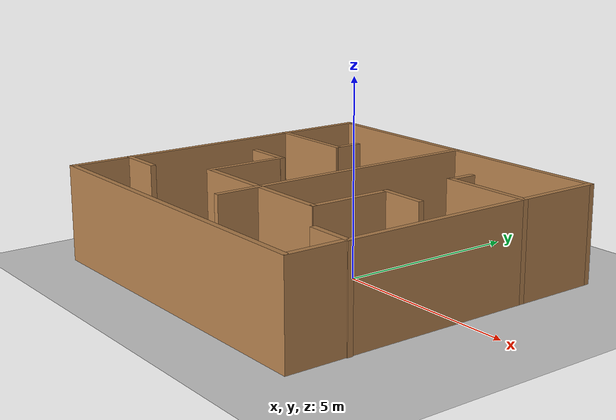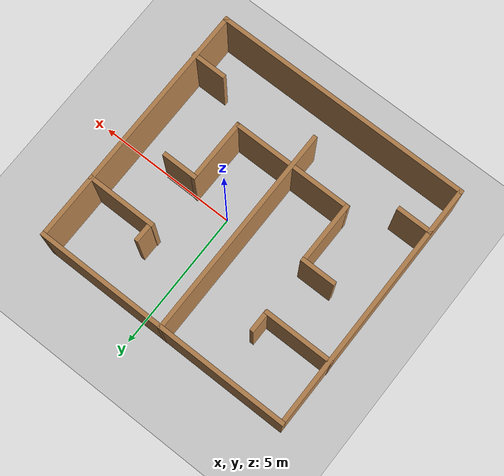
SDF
<sdf version="1.7">
 <world name="default">
  <light name="sun" type="directional">
   <pose>0 0 10 0 -0 0</pose>
   <diffuse>0.8 0.8 0.8 1</diffuse>
   <specular>0.2 0.2 0.2 1</specular>
   <attenuation>
    <range>1000</range>
    <constant>0.9</constant>
    <linear>0.01</linear>
    <quadratic>0.001</quadratic>
   </attenuation>
   <direction>-0.5 0.1 -0.9</direction>
   <spot><inner_angle>0</inner_angle><outer_angle>0</outer_angle><falloff>0</falloff></spot>
  </light>
  <model name="ground_plane">
   <static>1</static>
   <link name="link">
    <collision name="collision">
     <geometry><plane><normal>0 0 1</normal><size>100 100</size></plane></geometry>
     <surface>
      <contact><collide_bitmask>65535</collide_bitmask></contact>
      <friction><ode><mu>100</mu><mu2>50</mu2></ode></friction>
     </surface>
    </collision>
    <visual name="visual">
     <cast_shadows>0</cast_shadows>
     <geometry><plane><normal>0 0 1</normal><size>100 100</size></plane></geometry>
     <material>
      <script><uri>file://media/materials/scripts/gazebo.material</uri><name>Gazebo/Grey</name></script>
     </material>
    </visual>
   </link>
  </model>
  <physics type="ode">
   <real_time_update_rate>1000</real_time_update_rate>
   <max_step_size>0.001</max_step_size>
   <real_time_factor>1</real_time_factor>
   <ode>
    <solver>
     <type>quick</type>
     <iters>150</iters>
     <precon_iters>0</precon_iters>
     <sor>1.4</sor>
     <use_dynamic_moi_rescaling>1</use_dynamic_moi_rescaling>
    </solver>
    <constraints>
     <cfm>1e-05</cfm>
     <erp>0.2</erp>
     <contact_max_correcting_vel>2000</contact_max_correcting_vel>
     <contact_surface_layer>0.01</contact_surface_layer>
    </constraints>
   </ode>
  </physics>
  <scene><ambient>0.4 0.4 0.4 1</ambient><background>0.7 0.7 0.7 1</background><shadows>1</shadows></scene>
  <gravity>0 0 -9.8</gravity>
  <magnetic_field>6e-06 2.3e-05 -4.2e-05</magnetic_field>
  <atmosphere type="adiabatic"/>
  <spherical_coordinates>
   <surface_model>EARTH_WGS84</surface_model>
   <latitude_deg>0</latitude_deg>
   <longitude_deg>0</longitude_deg>
   <elevation>0</elevation>
   <heading_deg>0</heading_deg>
  </spherical_coordinates>
  <model name="turtlebot3_maze">
   <link name="Wall_0">
    <pose>4.55675 -0.009699 0 0 -0 1.5708</pose>
    <visual name="Wall_0_Visual">
     <pose>0 0 1.25 0 -0 0</pose>
     <geometry><box><size>9 0.15 2.5</size></box></geometry>
     <material>
      <script><uri>file://media/materials/scripts/gazebo.material</uri><name>Gazebo/Wood</name></script>
      <ambient>1 1 1 1</ambient>
      <shader type="pixel"/>
     </material>
     <meta><layer>0</layer></meta>
    </visual>
    <collision name="Wall_0_Collision">
     <pose>0 0 1.25 0 -0 0</pose>
     <geometry><box><size>9 0.15 2.5</size></box></geometry>
     <surface>
      <friction>
       <ode><mu>1</mu><mu2>1</mu2><fdir1>0 0 0</fdir1><slip1>0</slip1><slip2>0</slip2></ode>
       <torsional>
        <coefficient>1</coefficient>
        <patch_radius>0</patch_radius>
        <surface_radius>0</surface_radius>
        <use_patch_radius>1</use_patch_radius>
        <ode><slip>0</slip></ode>
       </torsional>
      </friction>
      <bounce><restitution_coefficient>0</restitution_coefficient><threshold>1e+06</threshold></bounce>
      <contact>
       <collide_without_contact>0</collide_without_contact>
       <collide_without_contact_bitmask>1</collide_without_contact_bitmask>
       <collide_bitmask>1</collide_bitmask>
       <ode>
        <soft_cfm>0</soft_cfm>
        <soft_erp>0.2</soft_erp>
        <kp>1e+13</kp>
        <kd>1</kd>
        <max_vel>0.01</max_vel>
        <min_depth>0</min_depth>
       </ode>
       <bullet>
        <split_impulse>1</split_impulse>
        <split_impulse_penetration_threshold>-0.01</split_impulse_penetration_threshold>
        <soft_cfm>0</soft_cfm>
        <soft_erp>0.2</soft_erp>
        <kp>1e+13</kp>
        <kd>1</kd>
       </bullet>
      </contact>
     </surface>
    </collision>
   </link>
   <link name="Wall_1">
    <pose>0.006754 4.4153 0 0 -0 3.14159</pose>
    <visual name="Wall_1_Visual">
     <pose>0 0 1.25 0 -0 0</pose>
     <geometry><box><size>9.25 0.15 2.5</size></box></geometry>
     <material>
      <script><uri>file://media/materials/scripts/gazebo.material</uri><name>Gazebo/Wood</name></script>
      <ambient>1 1 1 1</ambient>
      <shader type="pixel"/>
     </material>
     <meta><layer>0</layer></meta>
    </visual>
    <collision name="Wall_1_Collision">
     <pose>0 0 1.25 0 -0 0</pose>
     <geometry><box><size>9.25 0.15 2.5</size></box></geometry>
     <surface>
      <friction>
       <ode><mu>1</mu><mu2>1</mu2><fdir1>0 0 0</fdir1><slip1>0</slip1><slip2>0</slip2></ode>
       <torsional>
        <coefficient>1</coefficient>
        <patch_radius>0</patch_radius>
        <surface_radius>0</surface_radius>
        <use_patch_radius>1</use_patch_radius>
        <ode><slip>0</slip></ode>
       </torsional>
      </friction>
      <bounce><restitution_coefficient>0</restitution_coefficient><threshold>1e+06</threshold></bounce>
      <contact>
       <collide_without_contact>0</collide_without_contact>
       <collide_without_contact_bitmask>1</collide_without_contact_bitmask>
       <collide_bitmask>1</collide_bitmask>
       <ode>
        <soft_cfm>0</soft_cfm>
        <soft_erp>0.2</soft_erp>
        <kp>1e+13</kp>
        <kd>1</kd>
        <max_vel>0.01</max_vel>
        <min_depth>0</min_depth>
       </ode>
       <bullet>
        <split_impulse>1</split_impulse>
        <split_impulse_penetration_threshold>-0.01</split_impulse_penetration_threshold>
        <soft_cfm>0</soft_cfm>
        <soft_erp>0.2</soft_erp>
        <kp>1e+13</kp>
        <kd>1</kd>
       </bullet>
      </contact>
     </surface>
    </collision>
   </link>
   <link name="Wall_10">
    <pose>-1.05 -1.9153 0 0 -0 3.14159</pose>
    <visual name="Wall_10_Visual">
     <pose>0 0 1.25 0 -0 0</pose>
     <geometry><box><size>2.25 0.15 2.5</size></box></geometry>
     <material>
      <script><uri>file://media/materials/scripts/gazebo.material</uri><name>Gazebo/Wood</name></script>
      <ambient>1 1 1 1</ambient>
      <shader type="pixel"/>
     </material>
     <meta><layer>0</layer></meta>
    </visual>
    <collision name="Wall_10_Collision">
     <pose>0 0 1.25 0 -0 0</pose>
     <geometry><box><size>2.25 0.15 2.5</size></box></geometry>
     <surface>
      <friction>
       <ode><mu>1</mu><mu2>1</mu2><fdir1>0 0 0</fdir1><slip1>0</slip1><slip2>0</slip2></ode>
       <torsional>
        <coefficient>1</coefficient>
        <patch_radius>0</patch_radius>
        <surface_radius>0</surface_radius>
        <use_patch_radius>1</use_patch_radius>
        <ode><slip>0</slip></ode>
       </torsional>
      </friction>
      <bounce><restitution_coefficient>0</restitution_coefficient><threshold>1e+06</threshold></bounce>
      <contact>
       <collide_without_contact>0</collide_without_contact>
       <collide_without_contact_bitmask>1</collide_without_contact_bitmask>
       <collide_bitmask>1</collide_bitmask>
       <ode>
        <soft_cfm>0</soft_cfm>
        <soft_erp>0.2</soft_erp>
        <kp>1e+13</kp>
        <kd>1</kd>
        <max_vel>0.01</max_vel>
        <min_depth>0</min_depth>
       </ode>
       <bullet>
        <split_impulse>1</split_impulse>
        <split_impulse_penetration_threshold>-0.01</split_impulse_penetration_threshold>
        <soft_cfm>0</soft_cfm>
        <soft_erp>0.2</soft_erp>
        <kp>1e+13</kp>
        <kd>1</kd>
       </bullet>
      </contact>
     </surface>
    </collision>
   </link>
   <link name="Wall_12">
    <pose>-3.38176 2.12877 0 0 -0 0</pose>
    <visual name="Wall_12_Visual">
     <pose>0 0 1.25 0 -0 0</pose>
     <geometry><box><size>2.5 0.15 2.5</size></box></geometry>
     <material>
      <script><uri>file://media/materials/scripts/gazebo.material</uri><name>Gazebo/Wood</name></script>
      <ambient>1 1 1 1</ambient>
      <shader type="pixel"/>
     </material>
     <meta><layer>0</layer></meta>
    </visual>
    <collision name="Wall_12_Collision">
     <pose>0 0 1.25 0 -0 0</pose>
     <geometry><box><size>2.5 0.15 2.5</size></box></geometry>
     <surface>
      <friction>
       <ode><mu>1</mu><mu2>1</mu2><fdir1>0 0 0</fdir1><slip1>0</slip1><slip2>0</slip2></ode>
       <torsional>
        <coefficient>1</coefficient>
        <patch_radius>0</patch_radius>
        <surface_radius>0</surface_radius>
        <use_patch_radius>1</use_patch_radius>
        <ode><slip>0</slip></ode>
       </torsional>
      </friction>
      <bounce><restitution_coefficient>0</restitution_coefficient><threshold>1e+06</threshold></bounce>
      <contact>
       <collide_without_contact>0</collide_without_contact>
       <collide_without_contact_bitmask>1</collide_without_contact_bitmask>
       <collide_bitmask>1</collide_bitmask>
       <ode>
        <soft_cfm>0</soft_cfm>
        <soft_erp>0.2</soft_erp>
        <kp>1e+13</kp>
        <kd>1</kd>
        <max_vel>0.01</max_vel>
        <min_depth>0</min_depth>
       </ode>
       <bullet>
        <split_impulse>1</split_impulse>
        <split_impulse_penetration_threshold>-0.01</split_impulse_penetration_threshold>
        <soft_cfm>0</soft_cfm>
        <soft_erp>0.2</soft_erp>
        <kp>1e+13</kp>
        <kd>1</kd>
       </bullet>
      </contact>
     </surface>
    </collision>
   </link>
   <link name="Wall_12_clone">
    <pose>-3.97386 -2.84337 0 0 -0 0</pose>
    <inertial>
     <inertia><ixx>0</ixx><ixy>0</ixy><ixz>0</ixz><iyy>0</iyy><iyz>0</iyz><izz>0</izz></inertia>
     <mass>0</mass>
    </inertial>
    <visual name="Wall_12_Visual">
     <pose>0 0 1.25 0 -0 0</pose>
     <geometry><box><size>1.2647 0.15 2.5</size></box></geometry>
     <material>
      <script><uri>file://media/materials/scripts/gazebo.material</uri><name>Gazebo/Wood</name></script>
      <ambient>1 1 1 1</ambient>
      <shader type="pixel"/>
     </material>
     <meta><layer>0</layer></meta>
    </visual>
    <collision name="Wall_12_Collision">
     <pose>0 0 1.25 0 -0 0</pose>
     <geometry><box><size>1.2647 0.15 2.5</size></box></geometry>
     <surface>
      <friction>
       <ode><mu>1</mu><mu2>1</mu2><fdir1>0 0 0</fdir1><slip1>0</slip1><slip2>0</slip2></ode>
       <torsional>
        <coefficient>1</coefficient>
        <patch_radius>0</patch_radius>
        <surface_radius>0</surface_radius>
        <use_patch_radius>1</use_patch_radius>
        <ode><slip>0</slip></ode>
       </torsional>
      </friction>
      <bounce><restitution_coefficient>0</restitution_coefficient><threshold>1e+06</threshold></bounce>
      <contact>
       <collide_without_contact>0</collide_without_contact>
       <collide_without_contact_bitmask>1</collide_without_contact_bitmask>
       <collide_bitmask>1</collide_bitmask>
       <ode>
        <soft_cfm>0</soft_cfm>
        <soft_erp>0.2</soft_erp>
        <kp>1e+13</kp>
        <kd>1</kd>
        <max_vel>0.01</max_vel>
        <min_depth>0</min_depth>
       </ode>
       <bullet>
        <split_impulse>1</split_impulse>
        <split_impulse_penetration_threshold>-0.01</split_impulse_penetration_threshold>
        <soft_cfm>0</soft_cfm>
        <soft_erp>0.2</soft_erp>
        <kp>1e+13</kp>
        <kd>1</kd>
       </bullet>
      </contact>
     </surface>
    </collision>
   </link>
   <link name="Wall_12_clone_clone">
    <pose>4.0282 -2.88873 0 0 -0 0</pose>
    <inertial>
     <inertia><ixx>0</ixx><ixy>0</ixy><ixz>0</ixz><iyy>0</iyy><iyz>0</iyz><izz>0</izz></inertia>
     <mass>0</mass>
    </inertial>
    <visual name="Wall_12_Visual">
     <pose>0 0 1.25 0 -0 0</pose>
     <geometry><box><size>1.2647 0.15 2.5</size></box></geometry>
     <material>
      <script><uri>file://media/materials/scripts/gazebo.material</uri><name>Gazebo/Wood</name></script>
      <ambient>1 1 1 1</ambient>
      <shader type="pixel"/>
     </material>
     <meta><layer>0</layer></meta>
    </visual>
    <collision name="Wall_12_Collision">
     <pose>0 0 1.25 0 -0 0</pose>
     <geometry><box><size>1.2647 0.15 2.5</size></box></geometry>
     <surface>
      <friction>
       <ode><mu>1</mu><mu2>1</mu2><fdir1>0 0 0</fdir1><slip1>0</slip1><slip2>0</slip2></ode>
       <torsional>
        <coefficient>1</coefficient>
        <patch_radius>0</patch_radius>
        <surface_radius>0</surface_radius>
        <use_patch_radius>1</use_patch_radius>
        <ode><slip>0</slip></ode>
       </torsional>
      </friction>
      <bounce><restitution_coefficient>0</restitution_coefficient><threshold>1e+06</threshold></bounce>
      <contact>
       <collide_without_contact>0</collide_without_contact>
       <collide_without_contact_bitmask>1</collide_without_contact_bitmask>
       <collide_bitmask>1</collide_bitmask>
       <ode>
        <soft_cfm>0</soft_cfm>
        <soft_erp>0.2</soft_erp>
        <kp>1e+13</kp>
        <kd>1</kd>
        <max_vel>0.01</max_vel>
        <min_depth>0</min_depth>
       </ode>
       <bullet>
        <split_impulse>1</split_impulse>
        <split_impulse_penetration_threshold>-0.01</split_impulse_penetration_threshold>
        <soft_cfm>0</soft_cfm>
        <soft_erp>0.2</soft_erp>
        <kp>1e+13</kp>
        <kd>1</kd>
       </bullet>
      </contact>
     </surface>
    </collision>
   </link>
   <link name="Wall_12_clone_clone_clone">
    <pose>2.68373 0.201711 0 0 -0 0</pose>
    <inertial>
     <inertia><ixx>0</ixx><ixy>0</ixy><ixz>0</ixz><iyy>0</iyy><iyz>0</iyz><izz>0</izz></inertia>
     <mass>0</mass>
    </inertial>
    <visual name="Wall_12_Visual">
     <pose>0 0 1.25 0 -0 0</pose>
     <geometry><box><size>1.2647 0.15 2.5</size></box></geometry>
     <material>
      <script><uri>file://media/materials/scripts/gazebo.material</uri><name>Gazebo/Wood</name></script>
      <ambient>1 1 1 1</ambient>
      <shader type="pixel"/>
     </material>
     <meta><layer>0</layer></meta>
    </visual>
    <collision name="Wall_12_Collision">
     <pose>0 0 1.25 0 -0 0</pose>
     <geometry><box><size>1.2647 0.15 2.5</size></box></geometry>
     <surface>
      <friction>
       <ode><mu>1</mu><mu2>1</mu2><fdir1>0 0 0</fdir1><slip1>0</slip1><slip2>0</slip2></ode>
       <torsional>
        <coefficient>1</coefficient>
        <patch_radius>0</patch_radius>
        <surface_radius>0</surface_radius>
        <use_patch_radius>1</use_patch_radius>
        <ode><slip>0</slip></ode>
       </torsional>
      </friction>
      <bounce><restitution_coefficient>0</restitution_coefficient><threshold>1e+06</threshold></bounce>
      <contact>
       <collide_without_contact>0</collide_without_contact>
       <collide_without_contact_bitmask>1</collide_without_contact_bitmask>
       <collide_bitmask>1</collide_bitmask>
       <ode>
        <soft_cfm>0</soft_cfm>
        <soft_erp>0.2</soft_erp>
        <kp>1e+13</kp>
        <kd>1</kd>
        <max_vel>0.01</max_vel>
        <min_depth>0</min_depth>
       </ode>
       <bullet>
        <split_impulse>1</split_impulse>
        <split_impulse_penetration_threshold>-0.01</split_impulse_penetration_threshold>
        <soft_cfm>0</soft_cfm>
        <soft_erp>0.2</soft_erp>
        <kp>1e+13</kp>
        <kd>1</kd>
       </bullet>
      </contact>
     </surface>
    </collision>
   </link>
   <link name="Wall_12_clone_clone_clone_0">
    <pose>-2.642 0.20174 0 0 -0 0</pose>
    <inertial>
     <inertia><ixx>0</ixx><ixy>0</ixy><ixz>0</ixz><iyy>0</iyy><iyz>0</iyz><izz>0</izz></inertia>
     <mass>0</mass>
    </inertial>
    <visual name="Wall_12_Visual">
     <pose>0 0 1.25 0 -0 0</pose>
     <geometry><box><size>1.2647 0.15 2.5</size></box></geometry>
     <material>
      <script><uri>file://media/materials/scripts/gazebo.material</uri><name>Gazebo/Wood</name></script>
      <ambient>1 1 1 1</ambient>
      <shader type="pixel"/>
     </material>
     <meta><layer>0</layer></meta>
    </visual>
    <collision name="Wall_12_Collision">
     <pose>0 0 1.25 0 -0 0</pose>
     <geometry><box><size>1.2647 0.15 2.5</size></box></geometry>
     <surface>
      <friction>
       <ode><mu>1</mu><mu2>1</mu2><fdir1>0 0 0</fdir1><slip1>0</slip1><slip2>0</slip2></ode>
       <torsional>
        <coefficient>1</coefficient>
        <patch_radius>0</patch_radius>
        <surface_radius>0</surface_radius>
        <use_patch_radius>1</use_patch_radius>
        <ode><slip>0</slip></ode>
       </torsional>
      </friction>
      <bounce><restitution_coefficient>0</restitution_coefficient><threshold>1e+06</threshold></bounce>
      <contact>
       <collide_without_contact>0</collide_without_contact>
       <collide_without_contact_bitmask>1</collide_without_contact_bitmask>
       <collide_bitmask>1</collide_bitmask>
       <ode>
        <soft_cfm>0</soft_cfm>
        <soft_erp>0.2</soft_erp>
        <kp>1e+13</kp>
        <kd>1</kd>
        <max_vel>0.01</max_vel>
        <min_depth>0</min_depth>
       </ode>
       <bullet>
        <split_impulse>1</split_impulse>
        <split_impulse_penetration_threshold>-0.01</split_impulse_penetration_threshold>
        <soft_cfm>0</soft_cfm>
        <soft_erp>0.2</soft_erp>
        <kp>1e+13</kp>
        <kd>1</kd>
       </bullet>
      </contact>
     </surface>
    </collision>
   </link>
   <link name="Wall_12_clone_clone_clone_1">
    <pose>-2.18944 2.48019 0 0 0 -1.57442</pose>
    <inertial>
     <inertia><ixx>0</ixx><ixy>0</ixy><ixz>0</ixz><iyy>0</iyy><iyz>0</iyz><izz>0</izz></inertia>
     <mass>0</mass>
    </inertial>
    <visual name="Wall_12_Visual">
     <pose>0 0 1.25 0 -0 0</pose>
     <geometry><box><size>0.763568 0.15 2.5</size></box></geometry>
     <material>
      <script><uri>file://media/materials/scripts/gazebo.material</uri><name>Gazebo/Wood</name></script>
      <ambient>1 1 1 1</ambient>
      <shader type="pixel"/>
     </material>
     <meta><layer>0</layer></meta>
    </visual>
    <collision name="Wall_12_Collision">
     <pose>0 0 1.25 0 -0 0</pose>
     <geometry><box><size>0.763568 0.15 2.5</size></box></geometry>
     <surface>
      <friction>
       <ode><mu>1</mu><mu2>1</mu2><fdir1>0 0 0</fdir1><slip1>0</slip1><slip2>0</slip2></ode>
       <torsional>
        <coefficient>1</coefficient>
        <patch_radius>0</patch_radius>
        <surface_radius>0</surface_radius>
        <use_patch_radius>1</use_patch_radius>
        <ode><slip>0</slip></ode>
       </torsional>
      </friction>
      <bounce><restitution_coefficient>0</restitution_coefficient><threshold>1e+06</threshold></bounce>
      <contact>
       <collide_without_contact>0</collide_without_contact>
       <collide_without_contact_bitmask>1</collide_without_contact_bitmask>
       <collide_bitmask>1</collide_bitmask>
       <ode>
        <soft_cfm>0</soft_cfm>
        <soft_erp>0.2</soft_erp>
        <kp>1e+13</kp>
        <kd>1</kd>
        <max_vel>0.01</max_vel>
        <min_depth>0</min_depth>
       </ode>
       <bullet>
        <split_impulse>1</split_impulse>
        <split_impulse_penetration_threshold>-0.01</split_impulse_penetration_threshold>
        <soft_cfm>0</soft_cfm>
        <soft_erp>0.2</soft_erp>
        <kp>1e+13</kp>
        <kd>1</kd>
       </bullet>
      </contact>
     </surface>
    </collision>
   </link>
   <link name="Wall_12_clone_clone_clone_1_clone">
    <pose>2.2307 2.48022 0 0 0 -1.57442</pose>
    <inertial>
     <inertia><ixx>0</ixx><ixy>0</ixy><ixz>0</ixz><iyy>0</iyy><iyz>0</iyz><izz>0</izz></inertia>
     <mass>0</mass>
    </inertial>
    <visual name="Wall_12_Visual">
     <pose>0 0 1.25 0 -0 0</pose>
     <geometry><box><size>0.763568 0.15 2.5</size></box></geometry>
     <material>
      <script><uri>file://media/materials/scripts/gazebo.material</uri><name>Gazebo/Wood</name></script>
      <ambient>1 1 1 1</ambient>
      <shader type="pixel"/>
     </material>
     <meta><layer>0</layer></meta>
    </visual>
    <collision name="Wall_12_Collision">
     <pose>0 0 1.25 0 -0 0</pose>
     <geometry><box><size>0.763568 0.15 2.5</size></box></geometry>
     <surface>
      <friction>
       <ode><mu>1</mu><mu2>1</mu2><fdir1>0 0 0</fdir1><slip1>0</slip1><slip2>0</slip2></ode>
       <torsional>
        <coefficient>1</coefficient>
        <patch_radius>0</patch_radius>
        <surface_radius>0</surface_radius>
        <use_patch_radius>1</use_patch_radius>
        <ode><slip>0</slip></ode>
       </torsional>
      </friction>
      <bounce><restitution_coefficient>0</restitution_coefficient><threshold>1e+06</threshold></bounce>
      <contact>
       <collide_without_contact>0</collide_without_contact>
       <collide_without_contact_bitmask>1</collide_without_contact_bitmask>
       <collide_bitmask>1</collide_bitmask>
       <ode>
        <soft_cfm>0</soft_cfm>
        <soft_erp>0.2</soft_erp>
        <kp>1e+13</kp>
        <kd>1</kd>
        <max_vel>0.01</max_vel>
        <min_depth>0</min_depth>
       </ode>
       <bullet>
        <split_impulse>1</split_impulse>
        <split_impulse_penetration_threshold>-0.01</split_impulse_penetration_threshold>
        <soft_cfm>0</soft_cfm>
        <soft_erp>0.2</soft_erp>
        <kp>1e+13</kp>
        <kd>1</kd>
       </bullet>
      </contact>
     </surface>
    </collision>
   </link>
   <link name="Wall_14">
    <pose>3.38175 2.16652 0 0 -0 3.14159</pose>
    <visual name="Wall_14_Visual">
     <pose>0 0 1.25 0 -0 0</pose>
     <geometry><box><size>2.5 0.15 2.5</size></box></geometry>
     <material>
      <script><uri>file://media/materials/scripts/gazebo.material</uri><name>Gazebo/Wood</name></script>
      <ambient>1 1 1 1</ambient>
      <shader type="pixel"/>
     </material>
     <meta><layer>0</layer></meta>
    </visual>
    <collision name="Wall_14_Collision">
     <pose>0 0 1.25 0 -0 0</pose>
     <geometry><box><size>2.5 0.15 2.5</size></box></geometry>
     <surface>
      <friction>
       <ode><mu>1</mu><mu2>1</mu2><fdir1>0 0 0</fdir1><slip1>0</slip1><slip2>0</slip2></ode>
       <torsional>
        <coefficient>1</coefficient>
        <patch_radius>0</patch_radius>
        <surface_radius>0</surface_radius>
        <use_patch_radius>1</use_patch_radius>
        <ode><slip>0</slip></ode>
       </torsional>
      </friction>
      <bounce><restitution_coefficient>0</restitution_coefficient><threshold>1e+06</threshold></bounce>
      <contact>
       <collide_without_contact>0</collide_without_contact>
       <collide_without_contact_bitmask>1</collide_without_contact_bitmask>
       <collide_bitmask>1</collide_bitmask>
       <ode>
        <soft_cfm>0</soft_cfm>
        <soft_erp>0.2</soft_erp>
        <kp>1e+13</kp>
        <kd>1</kd>
        <max_vel>0.01</max_vel>
        <min_depth>0</min_depth>
       </ode>
       <bullet>
        <split_impulse>1</split_impulse>
        <split_impulse_penetration_threshold>-0.01</split_impulse_penetration_threshold>
        <soft_cfm>0</soft_cfm>
        <soft_erp>0.2</soft_erp>
        <kp>1e+13</kp>
        <kd>1</kd>
       </bullet>
      </contact>
     </surface>
    </collision>
   </link>
   <link name="Wall_4">
    <pose>-4.54325 -0.009699 0 0 0 -1.5708</pose>
    <visual name="Wall_4_Visual">
     <pose>0 0 1.25 0 -0 0</pose>
     <geometry><box><size>9 0.15 2.5</size></box></geometry>
     <material>
      <script><uri>file://media/materials/scripts/gazebo.material</uri><name>Gazebo/Wood</name></script>
      <ambient>1 1 1 1</ambient>
      <shader type="pixel"/>
     </material>
     <meta><layer>0</layer></meta>
    </visual>
    <collision name="Wall_4_Collision">
     <pose>0 0 1.25 0 -0 0</pose>
     <geometry><box><size>9 0.15 2.5</size></box></geometry>
     <surface>
      <friction>
       <ode><mu>1</mu><mu2>1</mu2><fdir1>0 0 0</fdir1><slip1>0</slip1><slip2>0</slip2></ode>
       <torsional>
        <coefficient>1</coefficient>
        <patch_radius>0</patch_radius>
        <surface_radius>0</surface_radius>
        <use_patch_radius>1</use_patch_radius>
        <ode><slip>0</slip></ode>
       </torsional>
      </friction>
      <bounce><restitution_coefficient>0</restitution_coefficient><threshold>1e+06</threshold></bounce>
      <contact>
       <collide_without_contact>0</collide_without_contact>
       <collide_without_contact_bitmask>1</collide_without_contact_bitmask>
       <collide_bitmask>1</collide_bitmask>
       <ode>
        <soft_cfm>0</soft_cfm>
        <soft_erp>0.2</soft_erp>
        <kp>1e+13</kp>
        <kd>1</kd>
        <max_vel>0.01</max_vel>
        <min_depth>0</min_depth>
       </ode>
       <bullet>
        <split_impulse>1</split_impulse>
        <split_impulse_penetration_threshold>-0.01</split_impulse_penetration_threshold>
        <soft_cfm>0</soft_cfm>
        <soft_erp>0.2</soft_erp>
        <kp>1e+13</kp>
        <kd>1</kd>
       </bullet>
      </contact>
     </surface>
    </collision>
   </link>
   <link name="Wall_5">
    <pose>0.006754 -4.4347 0 0 -0 0</pose>
    <visual name="Wall_5_Visual">
     <pose>0 0 1.25 0 -0 0</pose>
     <geometry><box><size>9.25 0.15 2.5</size></box></geometry>
     <material>
      <script><uri>file://media/materials/scripts/gazebo.material</uri><name>Gazebo/Wood</name></script>
      <ambient>1 1 1 1</ambient>
      <shader type="pixel"/>
     </material>
     <meta><layer>0</layer></meta>
    </visual>
    <collision name="Wall_5_Collision">
     <pose>0 0 1.25 0 -0 0</pose>
     <geometry><box><size>9.25 0.15 2.5</size></box></geometry>
     <surface>
      <friction>
       <ode><mu>1</mu><mu2>1</mu2><fdir1>0 0 0</fdir1><slip1>0</slip1><slip2>0</slip2></ode>
       <torsional>
        <coefficient>1</coefficient>
        <patch_radius>0</patch_radius>
        <surface_radius>0</surface_radius>
        <use_patch_radius>1</use_patch_radius>
        <ode><slip>0</slip></ode>
       </torsional>
      </friction>
      <bounce><restitution_coefficient>0</restitution_coefficient><threshold>1e+06</threshold></bounce>
      <contact>
       <collide_without_contact>0</collide_without_contact>
       <collide_without_contact_bitmask>1</collide_without_contact_bitmask>
       <collide_bitmask>1</collide_bitmask>
       <ode>
        <soft_cfm>0</soft_cfm>
        <soft_erp>0.2</soft_erp>
        <kp>1e+13</kp>
        <kd>1</kd>
        <max_vel>0.01</max_vel>
        <min_depth>0</min_depth>
       </ode>
       <bullet>
        <split_impulse>1</split_impulse>
        <split_impulse_penetration_threshold>-0.01</split_impulse_penetration_threshold>
        <soft_cfm>0</soft_cfm>
        <soft_erp>0.2</soft_erp>
        <kp>1e+13</kp>
        <kd>1</kd>
       </bullet>
      </contact>
     </surface>
    </collision>
   </link>
   <link name="Wall_7">
    <pose>-2e-06 0.693104 0 0 0 -1.5708</pose>
    <inertial>
     <inertia><ixx>0</ixx><ixy>0</ixy><ixz>0</ixz><iyy>0</iyy><iyz>0</iyz><izz>0</izz></inertia>
     <mass>0</mass>
    </inertial>
    <visual name="Wall_7_Visual">
     <pose>0 0 1.25 0 -0 0</pose>
     <geometry><box><size>7.60075 0.15 2.5</size></box></geometry>
     <material>
      <script><uri>file://media/materials/scripts/gazebo.material</uri><name>Gazebo/Wood</name></script>
      <ambient>1 1 1 1</ambient>
      <shader type="pixel"/>
     </material>
     <meta><layer>0</layer></meta>
    </visual>
    <collision name="Wall_7_Collision">
     <pose>0 0 1.25 0 -0 0</pose>
     <geometry><box><size>7.60075 0.15 2.5</size></box></geometry>
     <surface>
      <friction>
       <ode><mu>1</mu><mu2>1</mu2><fdir1>0 0 0</fdir1><slip1>0</slip1><slip2>0</slip2></ode>
       <torsional>
        <coefficient>1</coefficient>
        <patch_radius>0</patch_radius>
        <surface_radius>0</surface_radius>
        <use_patch_radius>1</use_patch_radius>
        <ode><slip>0</slip></ode>
       </torsional>
      </friction>
      <bounce><restitution_coefficient>0</restitution_coefficient><threshold>1e+06</threshold></bounce>
      <contact>
       <collide_without_contact>0</collide_without_contact>
       <collide_without_contact_bitmask>1</collide_without_contact_bitmask>
       <collide_bitmask>1</collide_bitmask>
       <ode>
        <soft_cfm>0</soft_cfm>
        <soft_erp>0.2</soft_erp>
        <kp>1e+13</kp>
        <kd>1</kd>
        <max_vel>0.01</max_vel>
        <min_depth>0</min_depth>
       </ode>
       <bullet>
        <split_impulse>1</split_impulse>
        <split_impulse_penetration_threshold>-0.01</split_impulse_penetration_threshold>
        <soft_cfm>0</soft_cfm>
        <soft_erp>0.2</soft_erp>
        <kp>1e+13</kp>
        <kd>1</kd>
       </bullet>
      </contact>
     </surface>
    </collision>
   </link>
   <link name="Wall_8">
    <pose>1.05 -1.9153 0 0 -0 0</pose>
    <visual name="Wall_8_Visual">
     <pose>0 0 1.25 0 -0 0</pose>
     <geometry><box><size>2.25 0.15 2.5</size></box></geometry>
     <material>
      <script><uri>file://media/materials/scripts/gazebo.material</uri><name>Gazebo/Wood</name></script>
      <ambient>1 1 1 1</ambient>
      <shader type="pixel"/>
     </material>
     <meta><layer>0</layer></meta>
    </visual>
    <collision name="Wall_8_Collision">
     <pose>0 0 1.25 0 -0 0</pose>
     <geometry><box><size>2.25 0.15 2.5</size></box></geometry>
     <surface>
      <friction>
       <ode><mu>1</mu><mu2>1</mu2><fdir1>0 0 0</fdir1><slip1>0</slip1><slip2>0</slip2></ode>
       <torsional>
        <coefficient>1</coefficient>
        <patch_radius>0</patch_radius>
        <surface_radius>0</surface_radius>
        <use_patch_radius>1</use_patch_radius>
        <ode><slip>0</slip></ode>
       </torsional>
      </friction>
      <bounce><restitution_coefficient>0</restitution_coefficient><threshold>1e+06</threshold></bounce>
      <contact>
       <collide_without_contact>0</collide_without_contact>
       <collide_without_contact_bitmask>1</collide_without_contact_bitmask>
       <collide_bitmask>1</collide_bitmask>
       <ode>
        <soft_cfm>0</soft_cfm>
        <soft_erp>0.2</soft_erp>
        <kp>1e+13</kp>
        <kd>1</kd>
        <max_vel>0.01</max_vel>
        <min_depth>0</min_depth>
       </ode>
       <bullet>
        <split_impulse>1</split_impulse>
        <split_impulse_penetration_threshold>-0.01</split_impulse_penetration_threshold>
        <soft_cfm>0</soft_cfm>
        <soft_erp>0.2</soft_erp>
        <kp>1e+13</kp>
        <kd>1</kd>
       </bullet>
      </contact>
     </surface>
    </collision>
   </link>
   <link name="Wall_8_clone">
    <pose>2.10987 -0.833396 0 0 0 -1.57582</pose>
    <visual name="Wall_8_Visual">
     <pose>0 0 1.25 0 -0 0</pose>
     <geometry><box><size>2.25 0.15 2.5</size></box></geometry>
     <material>
      <script><uri>file://media/materials/scripts/gazebo.material</uri><name>Gazebo/Wood</name></script>
      <ambient>1 1 1 1</ambient>
      <shader type="pixel"/>
     </material>
     <meta><layer>0</layer></meta>
    </visual>
    <collision name="Wall_8_Collision">
     <pose>0 0 1.25 0 -0 0</pose>
     <geometry><box><size>2.25 0.15 2.5</size></box></geometry>
     <surface>
      <friction>
       <ode><mu>1</mu><mu2>1</mu2><fdir1>0 0 0</fdir1><slip1>0</slip1><slip2>0</slip2></ode>
       <torsional>
        <coefficient>1</coefficient>
        <patch_radius>0</patch_radius>
        <surface_radius>0</surface_radius>
        <use_patch_radius>1</use_patch_radius>
        <ode><slip>0</slip></ode>
       </torsional>
      </friction>
      <bounce><restitution_coefficient>0</restitution_coefficient><threshold>1e+06</threshold></bounce>
      <contact>
       <collide_without_contact>0</collide_without_contact>
       <collide_without_contact_bitmask>1</collide_without_contact_bitmask>
       <collide_bitmask>1</collide_bitmask>
       <ode>
        <soft_cfm>0</soft_cfm>
        <soft_erp>0.2</soft_erp>
        <kp>1e+13</kp>
        <kd>1</kd>
        <max_vel>0.01</max_vel>
        <min_depth>0</min_depth>
       </ode>
       <bullet>
        <split_impulse>1</split_impulse>
        <split_impulse_penetration_threshold>-0.01</split_impulse_penetration_threshold>
        <soft_cfm>0</soft_cfm>
        <soft_erp>0.2</soft_erp>
        <kp>1e+13</kp>
        <kd>1</kd>
       </bullet>
      </contact>
     </surface>
    </collision>
   </link>
   <link name="Wall_8_clone_clone">
    <pose>-2.09219 -0.859357 0 0 0 -1.57582</pose>
    <visual name="Wall_8_Visual">
     <pose>0 0 1.25 0 -0 0</pose>
     <geometry><box><size>2.25 0.15 2.5</size></box></geometry>
     <material>
      <script><uri>file://media/materials/scripts/gazebo.material</uri><name>Gazebo/Wood</name></script>
      <ambient>1 1 1 1</ambient>
      <shader type="pixel"/>
     </material>
     <meta><layer>0</layer></meta>
    </visual>
    <collision name="Wall_8_Collision">
     <pose>0 0 1.25 0 -0 0</pose>
     <geometry><box><size>2.25 0.15 2.5</size></box></geometry>
     <surface>
      <friction>
       <ode><mu>1</mu><mu2>1</mu2><fdir1>0 0 0</fdir1><slip1>0</slip1><slip2>0</slip2></ode>
       <torsional>
        <coefficient>1</coefficient>
        <patch_radius>0</patch_radius>
        <surface_radius>0</surface_radius>
        <use_patch_radius>1</use_patch_radius>
        <ode><slip>0</slip></ode>
       </torsional>
      </friction>
      <bounce><restitution_coefficient>0</restitution_coefficient><threshold>1e+06</threshold></bounce>
      <contact>
       <collide_without_contact>0</collide_without_contact>
       <collide_without_contact_bitmask>1</collide_without_contact_bitmask>
       <collide_bitmask>1</collide_bitmask>
       <ode>
        <soft_cfm>0</soft_cfm>
        <soft_erp>0.2</soft_erp>
        <kp>1e+13</kp>
        <kd>1</kd>
        <max_vel>0.01</max_vel>
        <min_depth>0</min_depth>
       </ode>
       <bullet>
        <split_impulse>1</split_impulse>
        <split_impulse_penetration_threshold>-0.01</split_impulse_penetration_threshold>
        <soft_cfm>0</soft_cfm>
        <soft_erp>0.2</soft_erp>
        <kp>1e+13</kp>
        <kd>1</kd>
       </bullet>
      </contact>
     </surface>
    </collision>
   </link>
   <static>1</static>
   <pose>-0.88701 -0.21835 0 0 -0 0</pose>
  </model>
 </world>
</sdf>
